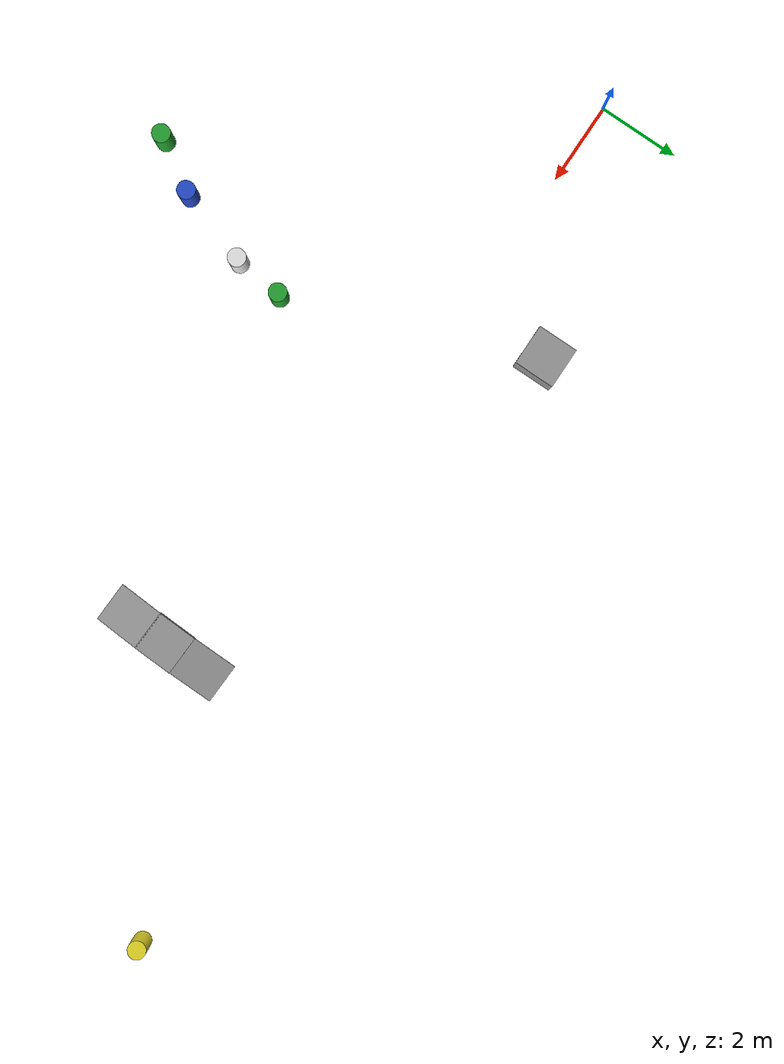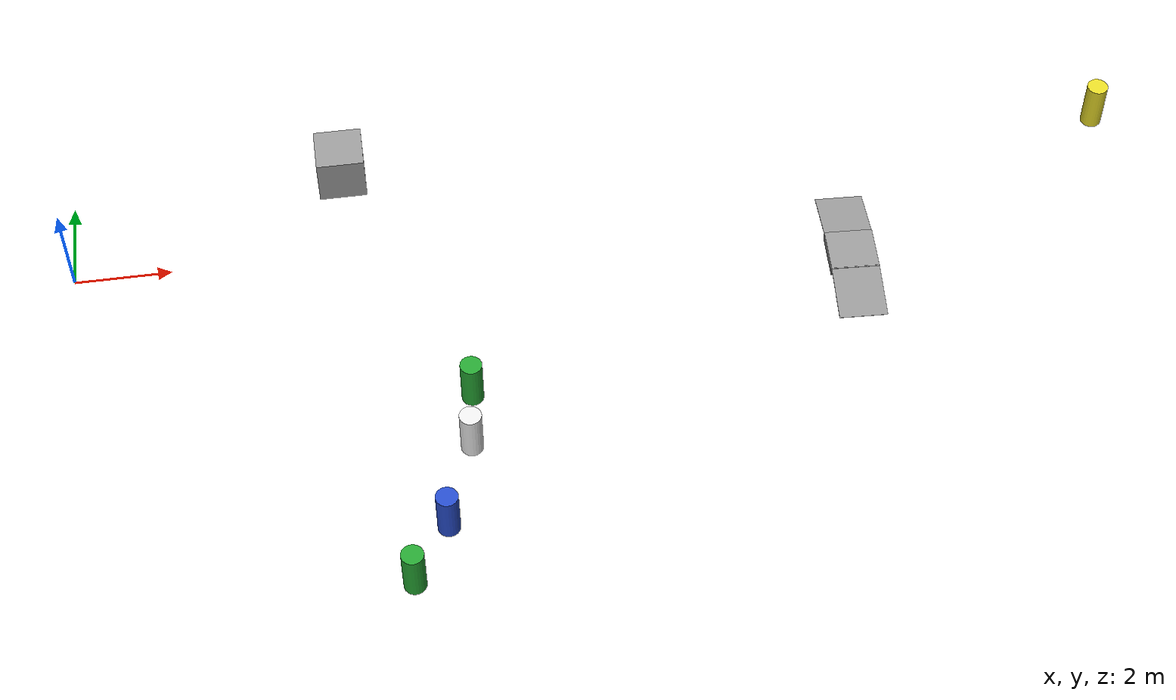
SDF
<sdf version="1.10">
 <world name="IGVC_AutoNav">
  <model name="barrel">
   <link name="link">
    <inertial>
     <mass>1</mass>
     <inertia>
      <ixx>0.14583299999999999</ixx>
      <ixy>0</ixy>
      <ixz>0</ixz>
      <iyy>0.14583299999999999</iyy>
      <iyz>0</iyz>
      <izz>0.125</izz>
     </inertia>
    </inertial>
    <visual name="visual">
     <geometry><cylinder><radius>0.222916</radius><length>1.0356700000000001</length></cylinder></geometry>
     <material>
      <script><name>Gazebo/Blue</name><uri>file://media/materials/scripts/gazebo.material</uri></script>
      <shader type="pixel"/>
     </material>
    </visual>
    <collision name="collision">
     <geometry><cylinder><radius>0.222916</radius><length>1.0356700000000001</length></cylinder></geometry>
     <surface>
      <friction>
       <ode><mu>1</mu><mu2>1</mu2><fdir1>0 0 0</fdir1><slip1>0</slip1><slip2>0</slip2></ode>
       <torsional>
        <coefficient>1</coefficient>
        <patch_radius>0</patch_radius>
        <surface_radius>0</surface_radius>
        <use_patch_radius>true</use_patch_radius>
        <ode><slip>0</slip></ode>
       </torsional>
      </friction>
      <bounce><restitution_coefficient>0</restitution_coefficient><threshold>1000000</threshold></bounce>
      <contact>
       <collide_without_contact>false</collide_without_contact>
       <collide_without_contact_bitmask>1</collide_without_contact_bitmask>
       <collide_bitmask>1</collide_bitmask>
       <ode>
        <soft_cfm>0</soft_cfm>
        <soft_erp>0.20000000000000001</soft_erp>
        <kp>10000000000000</kp>
        <kd>1</kd>
        <max_vel>0.01</max_vel>
        <min_depth>0</min_depth>
       </ode>
       <bullet>
        <split_impulse>true</split_impulse>
        <split_impulse_penetration_threshold>-0.01</split_impulse_penetration_threshold>
        <soft_cfm>0</soft_cfm>
        <soft_erp>0.20000000000000001</soft_erp>
        <kp>10000000000000</kp>
        <kd>1</kd>
       </bullet>
      </contact>
     </surface>
    </collision>
   </link>
   <static>false</static>
   <pose>7.06515 -6.9198300000000001 0.19306669072640001 -1.3752199554967039e-16 1.8690165760576609e-16 4.860942391092337e-19</pose>
  </model>
  <model name="barrel_0">
   <link name="link">
    <inertial>
     <mass>1</mass>
     <inertia>
      <ixx>0.14583299999999999</ixx>
      <ixy>0</ixy>
      <ixz>0</ixz>
      <iyy>0.14583299999999999</iyy>
      <iyz>0</iyz>
      <izz>0.125</izz>
     </inertia>
    </inertial>
    <visual name="visual">
     <geometry><cylinder><radius>0.222916</radius><length>1.0356700000000001</length></cylinder></geometry>
     <material>
      <script><name>Gazebo/Green</name><uri>file://media/materials/scripts/gazebo.material</uri></script>
      <shader type="pixel"/>
     </material>
    </visual>
    <collision name="collision">
     <geometry><cylinder><radius>0.222916</radius><length>1.0356700000000001</length></cylinder></geometry>
     <surface>
      <friction>
       <ode><mu>1</mu><mu2>1</mu2><fdir1>0 0 0</fdir1><slip1>0</slip1><slip2>0</slip2></ode>
       <torsional>
        <coefficient>1</coefficient>
        <patch_radius>0</patch_radius>
        <surface_radius>0</surface_radius>
        <use_patch_radius>true</use_patch_radius>
        <ode><slip>0</slip></ode>
       </torsional>
      </friction>
      <bounce><restitution_coefficient>0</restitution_coefficient><threshold>1000000</threshold></bounce>
      <contact>
       <collide_without_contact>false</collide_without_contact>
       <collide_without_contact_bitmask>1</collide_without_contact_bitmask>
       <collide_bitmask>1</collide_bitmask>
       <ode>
        <soft_cfm>0</soft_cfm>
        <soft_erp>0.20000000000000001</soft_erp>
        <kp>10000000000000</kp>
        <kd>1</kd>
        <max_vel>0.01</max_vel>
        <min_depth>0</min_depth>
       </ode>
       <bullet>
        <split_impulse>true</split_impulse>
        <split_impulse_penetration_threshold>-0.01</split_impulse_penetration_threshold>
        <soft_cfm>0</soft_cfm>
        <soft_erp>0.20000000000000001</soft_erp>
        <kp>10000000000000</kp>
        <kd>1</kd>
       </bullet>
      </contact>
     </surface>
    </collision>
   </link>
   <static>false</static>
   <pose>6.2997100000000001 -8.1233199999999997 0.19307069065783897 -1.7394015606776851e-16 1.6237547592391612e-16 2.9792624961899897e-20</pose>
  </model>
  <model name="barrel_30">
   <link name="link">
    <inertial>
     <mass>1</mass>
     <inertia>
      <ixx>0.14583299999999999</ixx>
      <ixy>0</ixy>
      <ixz>0</ixz>
      <iyy>0.14583299999999999</iyy>
      <iyz>0</iyz>
      <izz>0.125</izz>
     </inertia>
    </inertial>
    <visual name="visual">
     <geometry><cylinder><radius>0.222916</radius><length>1.0356700000000001</length></cylinder></geometry>
     <material>
      <script><name>Gazebo/Green</name><uri>file://media/materials/scripts/gazebo.material</uri></script>
      <shader type="pixel"/>
     </material>
    </visual>
    <collision name="collision">
     <geometry><cylinder><radius>0.222916</radius><length>1.0356700000000001</length></cylinder></geometry>
     <surface>
      <friction>
       <ode><mu>1</mu><mu2>1</mu2><fdir1>0 0 0</fdir1><slip1>0</slip1><slip2>0</slip2></ode>
       <torsional>
        <coefficient>1</coefficient>
        <patch_radius>0</patch_radius>
        <surface_radius>0</surface_radius>
        <use_patch_radius>true</use_patch_radius>
        <ode><slip>0</slip></ode>
       </torsional>
      </friction>
      <bounce><restitution_coefficient>0</restitution_coefficient><threshold>1000000</threshold></bounce>
      <contact>
       <collide_without_contact>false</collide_without_contact>
       <collide_without_contact_bitmask>1</collide_without_contact_bitmask>
       <collide_bitmask>1</collide_bitmask>
       <ode>
        <soft_cfm>0</soft_cfm>
        <soft_erp>0.20000000000000001</soft_erp>
        <kp>10000000000000</kp>
        <kd>1</kd>
        <max_vel>0.01</max_vel>
        <min_depth>0</min_depth>
       </ode>
       <bullet>
        <split_impulse>true</split_impulse>
        <split_impulse_penetration_threshold>-0.01</split_impulse_penetration_threshold>
        <soft_cfm>0</soft_cfm>
        <soft_erp>0.20000000000000001</soft_erp>
        <kp>10000000000000</kp>
        <kd>1</kd>
       </bullet>
      </contact>
     </surface>
    </collision>
   </link>
   <static>false</static>
   <pose>7.8527100000000001 -3.8606400000000001 0.19314668935517917 -5.7942940807575471e-17 2.1227875687508532e-16 4.0823611468546639e-19</pose>
  </model>
  <model name="barrel_33">
   <link name="link">
    <inertial>
     <mass>1</mass>
     <inertia>
      <ixx>0.14583299999999999</ixx>
      <ixy>0</ixy>
      <ixz>0</ixz>
      <iyy>0.14583299999999999</iyy>
      <iyz>0</iyz>
      <izz>0.125</izz>
     </inertia>
    </inertial>
    <visual name="visual">
     <geometry><cylinder><radius>0.222916</radius><length>1.0356700000000001</length></cylinder></geometry>
     <material>
      <script><name>Gazebo/White</name><uri>file://media/materials/scripts/gazebo.material</uri></script>
      <shader type="pixel"/>
     </material>
    </visual>
    <collision name="collision">
     <geometry><cylinder><radius>0.222916</radius><length>1.0356700000000001</length></cylinder></geometry>
     <surface>
      <friction>
       <ode><mu>1</mu><mu2>1</mu2><fdir1>0 0 0</fdir1><slip1>0</slip1><slip2>0</slip2></ode>
       <torsional>
        <coefficient>1</coefficient>
        <patch_radius>0</patch_radius>
        <surface_radius>0</surface_radius>
        <use_patch_radius>true</use_patch_radius>
        <ode><slip>0</slip></ode>
       </torsional>
      </friction>
      <bounce><restitution_coefficient>0</restitution_coefficient><threshold>1000000</threshold></bounce>
      <contact>
       <collide_without_contact>false</collide_without_contact>
       <collide_without_contact_bitmask>1</collide_without_contact_bitmask>
       <collide_bitmask>1</collide_bitmask>
       <ode>
        <soft_cfm>0</soft_cfm>
        <soft_erp>0.20000000000000001</soft_erp>
        <kp>10000000000000</kp>
        <kd>1</kd>
        <max_vel>0.01</max_vel>
        <min_depth>0</min_depth>
       </ode>
       <bullet>
        <split_impulse>true</split_impulse>
        <split_impulse_penetration_threshold>-0.01</split_impulse_penetration_threshold>
        <soft_cfm>0</soft_cfm>
        <soft_erp>0.20000000000000001</soft_erp>
        <kp>10000000000000</kp>
        <kd>1</kd>
       </bullet>
      </contact>
     </surface>
    </collision>
   </link>
   <static>false</static>
   <pose>7.7082499999999996 -5.0892799999999996 0.19316068911521553 -2.3973336178571617e-16 -3.9250611251697657e-17 1.319357103409985e-18</pose>
  </model>
  <model name="barrel_39">
   <link name="link">
    <inertial>
     <mass>1</mass>
     <inertia>
      <ixx>0.14583299999999999</ixx>
      <ixy>0</ixy>
      <ixz>0</ixz>
      <iyy>0.14583299999999999</iyy>
      <iyz>0</iyz>
      <izz>0.125</izz>
     </inertia>
    </inertial>
    <visual name="visual">
     <geometry><cylinder><radius>0.222916</radius><length>1.0356700000000001</length></cylinder></geometry>
     <material>
      <script><name>Gazebo/Yellow</name><uri>file://media/materials/scripts/gazebo.material</uri></script>
      <shader type="pixel"/>
     </material>
    </visual>
    <collision name="collision">
     <geometry><cylinder><radius>0.222916</radius><length>1.0356700000000001</length></cylinder></geometry>
     <surface>
      <friction>
       <ode><mu>1</mu><mu2>1</mu2><fdir1>0 0 0</fdir1><slip1>0</slip1><slip2>0</slip2></ode>
       <torsional>
        <coefficient>1</coefficient>
        <patch_radius>0</patch_radius>
        <surface_radius>0</surface_radius>
        <use_patch_radius>true</use_patch_radius>
        <ode><slip>0</slip></ode>
       </torsional>
      </friction>
      <bounce><restitution_coefficient>0</restitution_coefficient><threshold>1000000</threshold></bounce>
      <contact>
       <collide_without_contact>false</collide_without_contact>
       <collide_without_contact_bitmask>1</collide_without_contact_bitmask>
       <collide_bitmask>1</collide_bitmask>
       <ode>
        <soft_cfm>0</soft_cfm>
        <soft_erp>0.20000000000000001</soft_erp>
        <kp>10000000000000</kp>
        <kd>1</kd>
        <max_vel>0.01</max_vel>
        <min_depth>0</min_depth>
       </ode>
       <bullet>
        <split_impulse>true</split_impulse>
        <split_impulse_penetration_threshold>-0.01</split_impulse_penetration_threshold>
        <soft_cfm>0</soft_cfm>
        <soft_erp>0.20000000000000001</soft_erp>
        <kp>10000000000000</kp>
        <kd>1</kd>
       </bullet>
      </contact>
     </surface>
    </collision>
   </link>
   <static>false</static>
   <pose>22.23097038269043 1.8489799499511719 0.19258171898881798 2.1602551081061703e-16 3.7056233306102846e-17 1.6437920243263652e-18</pose>
  </model>
  <model name="unit_box">
   <pose>5.6846100000000002 2.0898400000000001 0.49999999980498339 -1.7525167119299675e-21 1.777658818047142e-21 4.4404074455936366e-22</pose>
   <link name="link">
    <inertial>
     <mass>1</mass>
     <inertia>
      <ixx>0.16666700000000001</ixx>
      <ixy>0</ixy>
      <ixz>0</ixz>
      <iyy>0.16666700000000001</iyy>
      <iyz>0</iyz>
      <izz>0.16666700000000001</izz>
     </inertia>
    </inertial>
    <collision name="collision"><geometry><box><size>0.99999199999999999 1 1</size></box></geometry></collision>
    <visual name="visual">
     <geometry><box><size>0.99999199999999999 1 1</size></box></geometry>
     <material>
      <script><name>Gazebo/Grey</name><uri>file://media/materials/scripts/gazebo.material</uri></script>
     </material>
    </visual>
   </link>
   <static>false</static>
  </model>
  <model name="Construction Barrel_1_clone_0">
   <link name="link">
    <inertial>
     <pose>0 0 0.40000000000000002 0 0 0</pose>
     <mass>500</mass>
     <inertia>
      <ixx>51.209600000000002</ixx>
      <iyy>51.209600000000002</iyy>
      <izz>25</izz>
      <ixy>0</ixy>
      <ixz>0</ixz>
      <iyz>0</iyz>
     </inertia>
    </inertial>
    <collision name="collision">
     <geometry><mesh><uri>model://construction_barrel/meshes/construction_barrel.dae</uri></mesh></geometry>
    </collision>
   </link>
   <pose>18.563100000040045 -22.37649999998677 -1.64938432825334e-07 2.3226450260393721e-07 -2.8413237664888169e-07 0.0062959999182714121</pose>
   <static>false</static>
  </model>
  <model name="RAMP2">
   <link name="link_0">
    <inertial>
     <mass>100</mass>
     <inertia>
      <ixx>8.69346</ixx>
      <ixy>0</ixy>
      <ixz>0</ixz>
      <iyy>8.69346</iyy>
      <iyz>0</iyz>
      <izz>16.666699999999999</izz>
     </inertia>
    </inertial>
    <pose>0.022429999999999999 -0.0047190000000000001 0.0083920000000000002 0 0 -0.048312000000000001</pose>
    <visual name="visual">
     <geometry><box><size>1 1 0.20788300000000001</size></box></geometry>
     <material>
      <lighting>true</lighting>
      <script><uri>file://media/materials/scripts/gazebo.material</uri><name>Gazebo/Grey</name></script>
      <shader type="pixel"><normal_map>__default__</normal_map></shader>
      <emissive>0 0 0 1</emissive>
      <ambient>0.300000012 0.300000012 0.300000012 1</ambient>
      <diffuse>0.699999988 0.699999988 0.699999988 1</diffuse>
      <specular>0.00999999978 0.00999999978 0.00999999978 1</specular>
     </material>
    </visual>
    <collision name="collision">
     <geometry><box><size>1 1 0.20788300000000001</size></box></geometry>
     <surface>
      <friction>
       <ode><mu>1</mu><mu2>1</mu2><fdir1>0 0 0</fdir1><slip1>0</slip1><slip2>0</slip2></ode>
       <torsional>
        <coefficient>1</coefficient>
        <patch_radius>0</patch_radius>
        <surface_radius>0</surface_radius>
        <use_patch_radius>true</use_patch_radius>
        <ode><slip>0</slip></ode>
       </torsional>
      </friction>
      <bounce><restitution_coefficient>0</restitution_coefficient><threshold>1000000</threshold></bounce>
      <contact>
       <collide_without_contact>false</collide_without_contact>
       <collide_without_contact_bitmask>1</collide_without_contact_bitmask>
       <collide_bitmask>1</collide_bitmask>
       <ode>
        <soft_cfm>0</soft_cfm>
        <soft_erp>0.20000000000000001</soft_erp>
        <kp>10000000000000</kp>
        <kd>1</kd>
        <max_vel>0.01</max_vel>
        <min_depth>0</min_depth>
       </ode>
       <bullet>
        <split_impulse>true</split_impulse>
        <split_impulse_penetration_threshold>-0.01</split_impulse_penetration_threshold>
        <soft_cfm>0</soft_cfm>
        <soft_erp>0.20000000000000001</soft_erp>
        <kp>10000000000000</kp>
        <kd>1</kd>
       </bullet>
      </contact>
     </surface>
    </collision>
   </link>
   <link name="link_1">
    <inertial>
     <mass>50</mass>
     <inertia>
      <ixx>5.7244999999999999</ixx>
      <ixy>0</ixy>
      <ixz>0</ixz>
      <iyy>4.1671199999999997</iyy>
      <iyz>0</iyz>
      <izz>9.8907100000000003</izz>
     </inertia>
    </inertial>
    <pose>-0.028115999999997143 -1.0520499999999997 -0.0041970000000000202 0.19279200000000007 0 -0.046122999999999963</pose>
    <visual name="visual">
     <geometry><box><size>1 1.17208 0.010432</size></box></geometry>
     <material>
      <lighting>true</lighting>
      <script><uri>file://media/materials/scripts/gazebo.material</uri><name>Gazebo/Grey</name></script>
      <shader type="pixel"><normal_map>__default__</normal_map></shader>
      <emissive>0 0 0 1</emissive>
     </material>
    </visual>
    <collision name="collision">
     <geometry><box><size>1 1.17208 0.010432</size></box></geometry>
     <surface>
      <friction>
       <ode><mu>1</mu><mu2>1</mu2><fdir1>0 0 0</fdir1><slip1>0</slip1><slip2>0</slip2></ode>
       <torsional>
        <coefficient>1</coefficient>
        <patch_radius>0</patch_radius>
        <surface_radius>0</surface_radius>
        <use_patch_radius>true</use_patch_radius>
        <ode><slip>0</slip></ode>
       </torsional>
      </friction>
      <bounce><restitution_coefficient>0</restitution_coefficient><threshold>1000000</threshold></bounce>
      <contact>
       <collide_without_contact>false</collide_without_contact>
       <collide_without_contact_bitmask>1</collide_without_contact_bitmask>
       <collide_bitmask>1</collide_bitmask>
       <ode>
        <soft_cfm>0</soft_cfm>
        <soft_erp>0.20000000000000001</soft_erp>
        <kp>10000000000000</kp>
        <kd>1</kd>
        <max_vel>0.01</max_vel>
        <min_depth>0</min_depth>
       </ode>
       <bullet>
        <split_impulse>true</split_impulse>
        <split_impulse_penetration_threshold>-0.01</split_impulse_penetration_threshold>
        <soft_cfm>0</soft_cfm>
        <soft_erp>0.20000000000000001</soft_erp>
        <kp>10000000000000</kp>
        <kd>1</kd>
       </bullet>
      </contact>
     </surface>
    </collision>
   </link>
   <link name="link_1_clone">
    <inertial>
     <mass>50</mass>
     <inertia>
      <ixx>5.7244999999999999</ixx>
      <ixy>0</ixy>
      <ixz>0</ixz>
      <iyy>4.1671199999999997</iyy>
      <iyz>0</iyz>
      <izz>9.8907100000000003</izz>
     </inertia>
    </inertial>
    <pose>0.064606000000001274 1.0540499999999993 -0.0041959999999999775 -0.19048000000000001 2.6020852139652106e-18 -0.046122999999999935</pose>
    <visual name="visual">
     <geometry><box><size>1 1.17208 0.010432</size></box></geometry>
     <material>
      <lighting>true</lighting>
      <script><uri>file://media/materials/scripts/gazebo.material</uri><name>Gazebo/Grey</name></script>
      <shader type="pixel"><normal_map>__default__</normal_map></shader>
      <emissive>0 0 0 1</emissive>
     </material>
    </visual>
    <collision name="collision">
     <geometry><box><size>1 1.17208 0.010432</size></box></geometry>
     <surface>
      <friction>
       <ode><mu>1</mu><mu2>1</mu2><fdir1>0 0 0</fdir1><slip1>0</slip1><slip2>0</slip2></ode>
       <torsional>
        <coefficient>1</coefficient>
        <patch_radius>0</patch_radius>
        <surface_radius>0</surface_radius>
        <use_patch_radius>true</use_patch_radius>
        <ode><slip>0</slip></ode>
       </torsional>
      </friction>
      <bounce><restitution_coefficient>0</restitution_coefficient><threshold>1000000</threshold></bounce>
      <contact>
       <collide_without_contact>false</collide_without_contact>
       <collide_without_contact_bitmask>1</collide_without_contact_bitmask>
       <collide_bitmask>1</collide_bitmask>
       <ode>
        <soft_cfm>0</soft_cfm>
        <soft_erp>0.20000000000000001</soft_erp>
        <kp>10000000000000</kp>
        <kd>1</kd>
        <max_vel>0.01</max_vel>
        <min_depth>0</min_depth>
       </ode>
       <bullet>
        <split_impulse>true</split_impulse>
        <split_impulse_penetration_threshold>-0.01</split_impulse_penetration_threshold>
        <soft_cfm>0</soft_cfm>
        <soft_erp>0.20000000000000001</soft_erp>
        <kp>10000000000000</kp>
        <kd>1</kd>
       </bullet>
      </contact>
     </surface>
    </collision>
   </link>
   <joint name="link_0_JOINT_1" type="fixed">
    <parent>link_0</parent>
    <child>link_1</child>
    <pose>1.7347234759768071e-17 2.2204460492503131e-16 5.5511151231257827e-17 -4.0657581468206416e-20 1.7347234759768071e-18 -3.5264830524668625e-38</pose>
    <physics>
     <ode>
      <limit><cfm>0</cfm><erp>0.20000000000000001</erp></limit>
      <suspension><cfm>0</cfm><erp>0.20000000000000001</erp></suspension>
     </ode>
    </physics>
   </joint>
   <joint name="link_0_JOINT_2" type="fixed">
    <parent>link_0</parent>
    <child>link_1_clone</child>
    <pose>-1.3877787807814457e-17 -4.4408920985006262e-16 0 0 0 0</pose>
    <physics>
     <ode>
      <limit><cfm>0</cfm><erp>0.20000000000000001</erp></limit>
      <suspension><cfm>0</cfm><erp>0.20000000000000001</erp></suspension>
     </ode>
    </physics>
   </joint>
   <static>false</static>
   <pose>16.036802274805144 -1.5646306270596249 0.12093784501813713 -0.00040752656673823589 1.880973484433612e-05 -4.5353655181132193e-09</pose>
  </model>
 </world>
</sdf>
